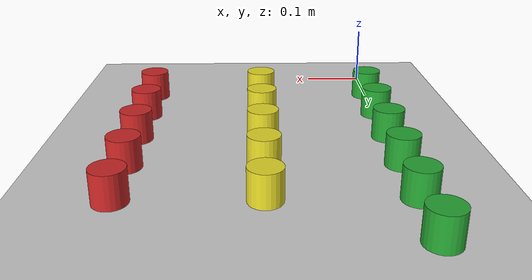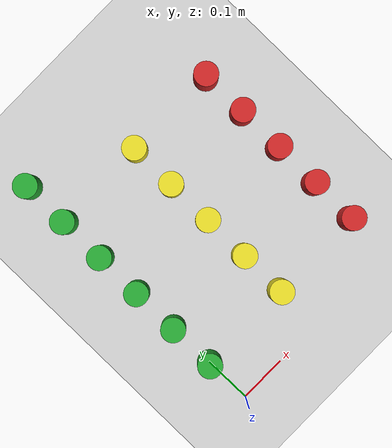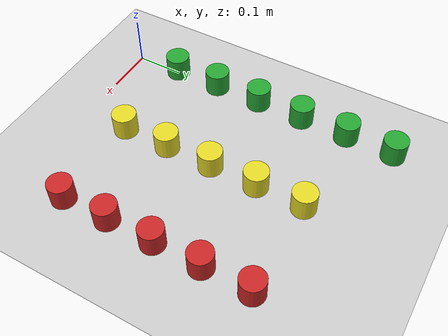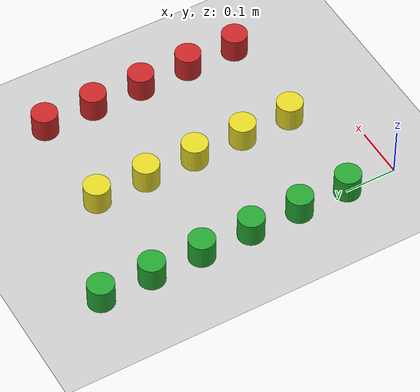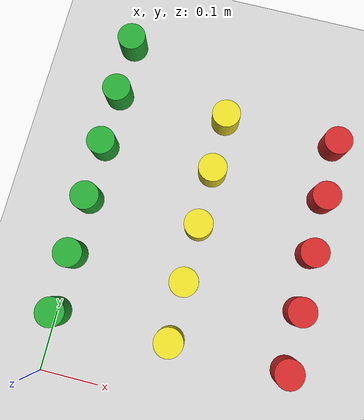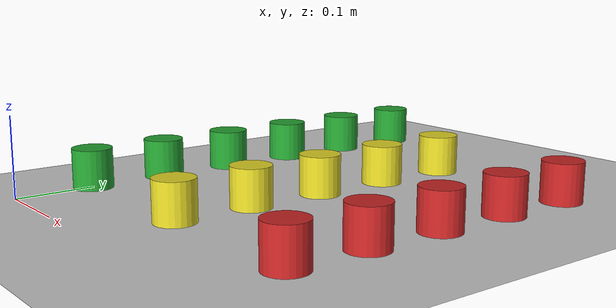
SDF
<sdf version="1.6">
 <world name="default">
  <model name="ground_plane">
   <static>1</static>
   <link name="link">
    <collision name="collision">
     <geometry><plane><normal>0 0 1</normal><size>100 100</size></plane></geometry>
     <surface>
      <contact><collide_bitmask>65535</collide_bitmask></contact>
      <friction><ode><mu>100</mu><mu2>50</mu2></ode></friction>
     </surface>
    </collision>
    <visual name="visual">
     <cast_shadows>0</cast_shadows>
     <geometry><plane><normal>0 0 1</normal><size>100 100</size></plane></geometry>
     <material>
      <script><uri>file://media/materials/scripts/gazebo.material</uri><name>Gazebo/Grey</name></script>
     </material>
    </visual>
   </link>
  </model>
  <model name="green_cylinder_short_clone_3">
   <link name="blue_cylinder_link">
    <inertial>
     <mass>1</mass>
     <inertia><ixx>0.145833</ixx><ixy>0</ixy><ixz>0</ixz><iyy>0.145833</iyy><iyz>0</iyz><izz>0.125</izz></inertia>
    </inertial>
    <pose>-0 -0 0.025 0 -0 0</pose>
    <visual name="visual">
     <geometry><cylinder><radius>0.025</radius><length>0.05</length></cylinder></geometry>
     <material>
      <script><name>Gazebo/Green</name><uri>file://media/materials/scripts/gazebo.material</uri></script>
      <shader type="pixel"><normal_map>__default__</normal_map></shader>
      <ambient>0 1 0 1</ambient>
      <diffuse>0 1 0 1</diffuse>
      <specular>0 1 0 1</specular>
      <emissive>0 1 0 1</emissive>
     </material>
    </visual>
    <collision name="collision">
     <geometry><cylinder><radius>0.025</radius><length>0.05</length></cylinder></geometry>
     <surface>
      <friction>
       <ode><mu>1</mu><mu2>1</mu2><fdir1>0 0 0</fdir1><slip1>0</slip1><slip2>0</slip2></ode>
       <torsional>
        <coefficient>1</coefficient>
        <patch_radius>0</patch_radius>
        <surface_radius>0</surface_radius>
        <use_patch_radius>1</use_patch_radius>
        <ode><slip>0</slip></ode>
       </torsional>
      </friction>
      <bounce><restitution_coefficient>0</restitution_coefficient><threshold>1e+06</threshold></bounce>
      <contact>
       <collide_without_contact>0</collide_without_contact>
       <collide_without_contact_bitmask>1</collide_without_contact_bitmask>
       <collide_bitmask>1</collide_bitmask>
       <ode>
        <soft_cfm>0</soft_cfm>
        <soft_erp>0.2</soft_erp>
        <kp>1e+13</kp>
        <kd>1</kd>
        <max_vel>0.01</max_vel>
        <min_depth>0</min_depth>
       </ode>
       <bullet>
        <split_impulse>1</split_impulse>
        <split_impulse_penetration_threshold>-0.01</split_impulse_penetration_threshold>
        <soft_cfm>0</soft_cfm>
        <soft_erp>0.2</soft_erp>
        <kp>1e+13</kp>
        <kd>1</kd>
       </bullet>
      </contact>
     </surface>
    </collision>
   </link>
   <static>0</static>
   <pose>0 0.1 0 -1e-06 1e-06 -1e-06</pose>
  </model>
  <model name="green_cylinder_short_clone_4">
   <link name="blue_cylinder_link">
    <inertial>
     <mass>1</mass>
     <inertia><ixx>0.145833</ixx><ixy>0</ixy><ixz>0</ixz><iyy>0.145833</iyy><iyz>0</iyz><izz>0.125</izz></inertia>
    </inertial>
    <pose>-0 -0 0.025 0 -0 0</pose>
    <visual name="visual">
     <geometry><cylinder><radius>0.025</radius><length>0.05</length></cylinder></geometry>
     <material>
      <script><name>Gazebo/Green</name><uri>file://media/materials/scripts/gazebo.material</uri></script>
      <shader type="pixel"><normal_map>__default__</normal_map></shader>
      <ambient>0 1 0 1</ambient>
      <diffuse>0 1 0 1</diffuse>
      <specular>0 1 0 1</specular>
      <emissive>0 1 0 1</emissive>
     </material>
    </visual>
    <collision name="collision">
     <geometry><cylinder><radius>0.025</radius><length>0.05</length></cylinder></geometry>
     <surface>
      <friction>
       <ode><mu>1</mu><mu2>1</mu2><fdir1>0 0 0</fdir1><slip1>0</slip1><slip2>0</slip2></ode>
       <torsional>
        <coefficient>1</coefficient>
        <patch_radius>0</patch_radius>
        <surface_radius>0</surface_radius>
        <use_patch_radius>1</use_patch_radius>
        <ode><slip>0</slip></ode>
       </torsional>
      </friction>
      <bounce><restitution_coefficient>0</restitution_coefficient><threshold>1e+06</threshold></bounce>
      <contact>
       <collide_without_contact>0</collide_without_contact>
       <collide_without_contact_bitmask>1</collide_without_contact_bitmask>
       <collide_bitmask>1</collide_bitmask>
       <ode>
        <soft_cfm>0</soft_cfm>
        <soft_erp>0.2</soft_erp>
        <kp>1e+13</kp>
        <kd>1</kd>
        <max_vel>0.01</max_vel>
        <min_depth>0</min_depth>
       </ode>
       <bullet>
        <split_impulse>1</split_impulse>
        <split_impulse_penetration_threshold>-0.01</split_impulse_penetration_threshold>
        <soft_cfm>0</soft_cfm>
        <soft_erp>0.2</soft_erp>
        <kp>1e+13</kp>
        <kd>1</kd>
       </bullet>
      </contact>
     </surface>
    </collision>
   </link>
   <static>0</static>
   <pose>0 0.2 0 -1e-06 1e-06 -1e-06</pose>
  </model>
  <model name="green_cylinder_short_clone_5">
   <link name="blue_cylinder_link">
    <inertial>
     <mass>1</mass>
     <inertia><ixx>0.145833</ixx><ixy>0</ixy><ixz>0</ixz><iyy>0.145833</iyy><iyz>0</iyz><izz>0.125</izz></inertia>
    </inertial>
    <pose>-0 -0 0.025 0 -0 0</pose>
    <visual name="visual">
     <geometry><cylinder><radius>0.025</radius><length>0.05</length></cylinder></geometry>
     <material>
      <script><name>Gazebo/Green</name><uri>file://media/materials/scripts/gazebo.material</uri></script>
      <shader type="pixel"><normal_map>__default__</normal_map></shader>
      <ambient>0 1 0 1</ambient>
      <diffuse>0 1 0 1</diffuse>
      <specular>0 1 0 1</specular>
      <emissive>0 1 0 1</emissive>
     </material>
    </visual>
    <collision name="collision">
     <geometry><cylinder><radius>0.025</radius><length>0.05</length></cylinder></geometry>
     <surface>
      <friction>
       <ode><mu>1</mu><mu2>1</mu2><fdir1>0 0 0</fdir1><slip1>0</slip1><slip2>0</slip2></ode>
       <torsional>
        <coefficient>1</coefficient>
        <patch_radius>0</patch_radius>
        <surface_radius>0</surface_radius>
        <use_patch_radius>1</use_patch_radius>
        <ode><slip>0</slip></ode>
       </torsional>
      </friction>
      <bounce><restitution_coefficient>0</restitution_coefficient><threshold>1e+06</threshold></bounce>
      <contact>
       <collide_without_contact>0</collide_without_contact>
       <collide_without_contact_bitmask>1</collide_without_contact_bitmask>
       <collide_bitmask>1</collide_bitmask>
       <ode>
        <soft_cfm>0</soft_cfm>
        <soft_erp>0.2</soft_erp>
        <kp>1e+13</kp>
        <kd>1</kd>
        <max_vel>0.01</max_vel>
        <min_depth>0</min_depth>
       </ode>
       <bullet>
        <split_impulse>1</split_impulse>
        <split_impulse_penetration_threshold>-0.01</split_impulse_penetration_threshold>
        <soft_cfm>0</soft_cfm>
        <soft_erp>0.2</soft_erp>
        <kp>1e+13</kp>
        <kd>1</kd>
       </bullet>
      </contact>
     </surface>
    </collision>
   </link>
   <static>0</static>
   <pose>0 0.3 0 -1e-06 1e-06 -1e-06</pose>
  </model>
  <model name="green_cylinder_short_clone_6">
   <link name="blue_cylinder_link">
    <inertial>
     <mass>1</mass>
     <inertia><ixx>0.145833</ixx><ixy>0</ixy><ixz>0</ixz><iyy>0.145833</iyy><iyz>0</iyz><izz>0.125</izz></inertia>
    </inertial>
    <pose>-0 -0 0.025 0 -0 0</pose>
    <visual name="visual">
     <geometry><cylinder><radius>0.025</radius><length>0.05</length></cylinder></geometry>
     <material>
      <script><name>Gazebo/Green</name><uri>file://media/materials/scripts/gazebo.material</uri></script>
      <shader type="pixel"><normal_map>__default__</normal_map></shader>
      <ambient>0 1 0 1</ambient>
      <diffuse>0 1 0 1</diffuse>
      <specular>0 1 0 1</specular>
      <emissive>0 1 0 1</emissive>
     </material>
    </visual>
    <collision name="collision">
     <geometry><cylinder><radius>0.025</radius><length>0.05</length></cylinder></geometry>
     <surface>
      <friction>
       <ode><mu>1</mu><mu2>1</mu2><fdir1>0 0 0</fdir1><slip1>0</slip1><slip2>0</slip2></ode>
       <torsional>
        <coefficient>1</coefficient>
        <patch_radius>0</patch_radius>
        <surface_radius>0</surface_radius>
        <use_patch_radius>1</use_patch_radius>
        <ode><slip>0</slip></ode>
       </torsional>
      </friction>
      <bounce><restitution_coefficient>0</restitution_coefficient><threshold>1e+06</threshold></bounce>
      <contact>
       <collide_without_contact>0</collide_without_contact>
       <collide_without_contact_bitmask>1</collide_without_contact_bitmask>
       <collide_bitmask>1</collide_bitmask>
       <ode>
        <soft_cfm>0</soft_cfm>
        <soft_erp>0.2</soft_erp>
        <kp>1e+13</kp>
        <kd>1</kd>
        <max_vel>0.01</max_vel>
        <min_depth>0</min_depth>
       </ode>
       <bullet>
        <split_impulse>1</split_impulse>
        <split_impulse_penetration_threshold>-0.01</split_impulse_penetration_threshold>
        <soft_cfm>0</soft_cfm>
        <soft_erp>0.2</soft_erp>
        <kp>1e+13</kp>
        <kd>1</kd>
       </bullet>
      </contact>
     </surface>
    </collision>
   </link>
   <static>0</static>
   <pose>0 0.4 0 -1e-06 1e-06 -1e-06</pose>
  </model>
  <model name="green_cylinder_short_clone_7">
   <link name="blue_cylinder_link">
    <inertial>
     <mass>1</mass>
     <inertia><ixx>0.145833</ixx><ixy>0</ixy><ixz>0</ixz><iyy>0.145833</iyy><iyz>0</iyz><izz>0.125</izz></inertia>
    </inertial>
    <pose>-0 -0 0.025 0 -0 0</pose>
    <visual name="visual">
     <geometry><cylinder><radius>0.025</radius><length>0.05</length></cylinder></geometry>
     <material>
      <script><name>Gazebo/Green</name><uri>file://media/materials/scripts/gazebo.material</uri></script>
      <shader type="pixel"><normal_map>__default__</normal_map></shader>
      <ambient>0 1 0 1</ambient>
      <diffuse>0 1 0 1</diffuse>
      <specular>0 1 0 1</specular>
      <emissive>0 1 0 1</emissive>
     </material>
    </visual>
    <collision name="collision">
     <geometry><cylinder><radius>0.025</radius><length>0.05</length></cylinder></geometry>
     <surface>
      <friction>
       <ode><mu>1</mu><mu2>1</mu2><fdir1>0 0 0</fdir1><slip1>0</slip1><slip2>0</slip2></ode>
       <torsional>
        <coefficient>1</coefficient>
        <patch_radius>0</patch_radius>
        <surface_radius>0</surface_radius>
        <use_patch_radius>1</use_patch_radius>
        <ode><slip>0</slip></ode>
       </torsional>
      </friction>
      <bounce><restitution_coefficient>0</restitution_coefficient><threshold>1e+06</threshold></bounce>
      <contact>
       <collide_without_contact>0</collide_without_contact>
       <collide_without_contact_bitmask>1</collide_without_contact_bitmask>
       <collide_bitmask>1</collide_bitmask>
       <ode>
        <soft_cfm>0</soft_cfm>
        <soft_erp>0.2</soft_erp>
        <kp>1e+13</kp>
        <kd>1</kd>
        <max_vel>0.01</max_vel>
        <min_depth>0</min_depth>
       </ode>
       <bullet>
        <split_impulse>1</split_impulse>
        <split_impulse_penetration_threshold>-0.01</split_impulse_penetration_threshold>
        <soft_cfm>0</soft_cfm>
        <soft_erp>0.2</soft_erp>
        <kp>1e+13</kp>
        <kd>1</kd>
       </bullet>
      </contact>
     </surface>
    </collision>
   </link>
   <static>0</static>
   <pose>0 0.5 0 -1e-06 1e-06 -1e-06</pose>
  </model>
  <model name="green_cylinder_short_clone_8">
   <link name="blue_cylinder_link">
    <inertial>
     <mass>1</mass>
     <inertia><ixx>0.145833</ixx><ixy>0</ixy><ixz>0</ixz><iyy>0.145833</iyy><iyz>0</iyz><izz>0.125</izz></inertia>
    </inertial>
    <pose>-0 -0 0.025 0 -0 0</pose>
    <visual name="visual">
     <geometry><cylinder><radius>0.025</radius><length>0.05</length></cylinder></geometry>
     <material>
      <script><name>Gazebo/Green</name><uri>file://media/materials/scripts/gazebo.material</uri></script>
      <shader type="pixel"><normal_map>__default__</normal_map></shader>
      <ambient>0 1 0 1</ambient>
      <diffuse>0 1 0 1</diffuse>
      <specular>0 1 0 1</specular>
      <emissive>0 1 0 1</emissive>
     </material>
    </visual>
    <collision name="collision">
     <geometry><cylinder><radius>0.025</radius><length>0.05</length></cylinder></geometry>
     <surface>
      <friction>
       <ode><mu>1</mu><mu2>1</mu2><fdir1>0 0 0</fdir1><slip1>0</slip1><slip2>0</slip2></ode>
       <torsional>
        <coefficient>1</coefficient>
        <patch_radius>0</patch_radius>
        <surface_radius>0</surface_radius>
        <use_patch_radius>1</use_patch_radius>
        <ode><slip>0</slip></ode>
       </torsional>
      </friction>
      <bounce><restitution_coefficient>0</restitution_coefficient><threshold>1e+06</threshold></bounce>
      <contact>
       <collide_without_contact>0</collide_without_contact>
       <collide_without_contact_bitmask>1</collide_without_contact_bitmask>
       <collide_bitmask>1</collide_bitmask>
       <ode>
        <soft_cfm>0</soft_cfm>
        <soft_erp>0.2</soft_erp>
        <kp>1e+13</kp>
        <kd>1</kd>
        <max_vel>0.01</max_vel>
        <min_depth>0</min_depth>
       </ode>
       <bullet>
        <split_impulse>1</split_impulse>
        <split_impulse_penetration_threshold>-0.01</split_impulse_penetration_threshold>
        <soft_cfm>0</soft_cfm>
        <soft_erp>0.2</soft_erp>
        <kp>1e+13</kp>
        <kd>1</kd>
       </bullet>
      </contact>
     </surface>
    </collision>
   </link>
   <static>0</static>
   <pose>0 0.6 0 -1e-06 1e-06 -1e-06</pose>
  </model>
  <model name="yellow_cylinder_short_clone_3">
   <link name="blue_cylinder_link">
    <inertial>
     <mass>1</mass>
     <inertia><ixx>0.145833</ixx><ixy>0</ixy><ixz>0</ixz><iyy>0.145833</iyy><iyz>0</iyz><izz>0.125</izz></inertia>
    </inertial>
    <pose>-0 -0 0.025 0 -0 0</pose>
    <visual name="visual">
     <geometry><cylinder><radius>0.025</radius><length>0.05</length></cylinder></geometry>
     <material>
      <script><name>Gazebo/Yellow</name><uri>file://media/materials/scripts/gazebo.material</uri></script>
      <shader type="pixel"><normal_map>__default__</normal_map></shader>
      <ambient>1 0.8 0 1</ambient>
      <diffuse>1 0.8 0 1</diffuse>
      <specular>1 0.8 0 1</specular>
      <emissive>1 0.8 0 1</emissive>
     </material>
    </visual>
    <collision name="collision">
     <geometry><cylinder><radius>0.025</radius><length>0.05</length></cylinder></geometry>
     <surface>
      <friction>
       <ode><mu>1</mu><mu2>1</mu2><fdir1>0 0 0</fdir1><slip1>0</slip1><slip2>0</slip2></ode>
       <torsional>
        <coefficient>1</coefficient>
        <patch_radius>0</patch_radius>
        <surface_radius>0</surface_radius>
        <use_patch_radius>1</use_patch_radius>
        <ode><slip>0</slip></ode>
       </torsional>
      </friction>
      <bounce><restitution_coefficient>0</restitution_coefficient><threshold>1e+06</threshold></bounce>
      <contact>
       <collide_without_contact>0</collide_without_contact>
       <collide_without_contact_bitmask>1</collide_without_contact_bitmask>
       <collide_bitmask>1</collide_bitmask>
       <ode>
        <soft_cfm>0</soft_cfm>
        <soft_erp>0.2</soft_erp>
        <kp>1e+13</kp>
        <kd>1</kd>
        <max_vel>0.01</max_vel>
        <min_depth>0</min_depth>
       </ode>
       <bullet>
        <split_impulse>1</split_impulse>
        <split_impulse_penetration_threshold>-0.01</split_impulse_penetration_threshold>
        <soft_cfm>0</soft_cfm>
        <soft_erp>0.2</soft_erp>
        <kp>1e+13</kp>
        <kd>1</kd>
       </bullet>
      </contact>
     </surface>
    </collision>
   </link>
   <static>0</static>
   <pose>0.2 0.1 0 -1e-06 1e-06 -1e-06</pose>
  </model>
  <model name="yellow_cylinder_short_clone_4">
   <link name="blue_cylinder_link">
    <inertial>
     <mass>1</mass>
     <inertia><ixx>0.145833</ixx><ixy>0</ixy><ixz>0</ixz><iyy>0.145833</iyy><iyz>0</iyz><izz>0.125</izz></inertia>
    </inertial>
    <pose>-0 -0 0.025 0 -0 0</pose>
    <visual name="visual">
     <geometry><cylinder><radius>0.025</radius><length>0.05</length></cylinder></geometry>
     <material>
      <script><name>Gazebo/Yellow</name><uri>file://media/materials/scripts/gazebo.material</uri></script>
      <shader type="pixel"><normal_map>__default__</normal_map></shader>
      <ambient>1 0.8 0 1</ambient>
      <diffuse>1 0.8 0 1</diffuse>
      <specular>1 0.8 0 1</specular>
      <emissive>1 0.8 0 1</emissive>
     </material>
    </visual>
    <collision name="collision">
     <geometry><cylinder><radius>0.025</radius><length>0.05</length></cylinder></geometry>
     <surface>
      <friction>
       <ode><mu>1</mu><mu2>1</mu2><fdir1>0 0 0</fdir1><slip1>0</slip1><slip2>0</slip2></ode>
       <torsional>
        <coefficient>1</coefficient>
        <patch_radius>0</patch_radius>
        <surface_radius>0</surface_radius>
        <use_patch_radius>1</use_patch_radius>
        <ode><slip>0</slip></ode>
       </torsional>
      </friction>
      <bounce><restitution_coefficient>0</restitution_coefficient><threshold>1e+06</threshold></bounce>
      <contact>
       <collide_without_contact>0</collide_without_contact>
       <collide_without_contact_bitmask>1</collide_without_contact_bitmask>
       <collide_bitmask>1</collide_bitmask>
       <ode>
        <soft_cfm>0</soft_cfm>
        <soft_erp>0.2</soft_erp>
        <kp>1e+13</kp>
        <kd>1</kd>
        <max_vel>0.01</max_vel>
        <min_depth>0</min_depth>
       </ode>
       <bullet>
        <split_impulse>1</split_impulse>
        <split_impulse_penetration_threshold>-0.01</split_impulse_penetration_threshold>
        <soft_cfm>0</soft_cfm>
        <soft_erp>0.2</soft_erp>
        <kp>1e+13</kp>
        <kd>1</kd>
       </bullet>
      </contact>
     </surface>
    </collision>
   </link>
   <static>0</static>
   <pose>0.2 0.2 0 -1e-06 1e-06 -1e-06</pose>
  </model>
  <model name="yellow_cylinder_short_clone_5">
   <link name="blue_cylinder_link">
    <inertial>
     <mass>1</mass>
     <inertia><ixx>0.145833</ixx><ixy>0</ixy><ixz>0</ixz><iyy>0.145833</iyy><iyz>0</iyz><izz>0.125</izz></inertia>
    </inertial>
    <pose>-0 -0 0.025 0 -0 0</pose>
    <visual name="visual">
     <geometry><cylinder><radius>0.025</radius><length>0.05</length></cylinder></geometry>
     <material>
      <script><name>Gazebo/Yellow</name><uri>file://media/materials/scripts/gazebo.material</uri></script>
      <shader type="pixel"><normal_map>__default__</normal_map></shader>
      <ambient>1 0.8 0 1</ambient>
      <diffuse>1 0.8 0 1</diffuse>
      <specular>1 0.8 0 1</specular>
      <emissive>1 0.8 0 1</emissive>
     </material>
    </visual>
    <collision name="collision">
     <geometry><cylinder><radius>0.025</radius><length>0.05</length></cylinder></geometry>
     <surface>
      <friction>
       <ode><mu>1</mu><mu2>1</mu2><fdir1>0 0 0</fdir1><slip1>0</slip1><slip2>0</slip2></ode>
       <torsional>
        <coefficient>1</coefficient>
        <patch_radius>0</patch_radius>
        <surface_radius>0</surface_radius>
        <use_patch_radius>1</use_patch_radius>
        <ode><slip>0</slip></ode>
       </torsional>
      </friction>
      <bounce><restitution_coefficient>0</restitution_coefficient><threshold>1e+06</threshold></bounce>
      <contact>
       <collide_without_contact>0</collide_without_contact>
       <collide_without_contact_bitmask>1</collide_without_contact_bitmask>
       <collide_bitmask>1</collide_bitmask>
       <ode>
        <soft_cfm>0</soft_cfm>
        <soft_erp>0.2</soft_erp>
        <kp>1e+13</kp>
        <kd>1</kd>
        <max_vel>0.01</max_vel>
        <min_depth>0</min_depth>
       </ode>
       <bullet>
        <split_impulse>1</split_impulse>
        <split_impulse_penetration_threshold>-0.01</split_impulse_penetration_threshold>
        <soft_cfm>0</soft_cfm>
        <soft_erp>0.2</soft_erp>
        <kp>1e+13</kp>
        <kd>1</kd>
       </bullet>
      </contact>
     </surface>
    </collision>
   </link>
   <static>0</static>
   <pose>0.2 0.3 0 -1e-06 1e-06 -1e-06</pose>
  </model>
  <model name="yellow_cylinder_short_clone_6">
   <link name="blue_cylinder_link">
    <inertial>
     <mass>1</mass>
     <inertia><ixx>0.145833</ixx><ixy>0</ixy><ixz>0</ixz><iyy>0.145833</iyy><iyz>0</iyz><izz>0.125</izz></inertia>
    </inertial>
    <pose>-0 -0 0.025 0 -0 0</pose>
    <visual name="visual">
     <geometry><cylinder><radius>0.025</radius><length>0.05</length></cylinder></geometry>
     <material>
      <script><name>Gazebo/Yellow</name><uri>file://media/materials/scripts/gazebo.material</uri></script>
      <shader type="pixel"><normal_map>__default__</normal_map></shader>
      <ambient>1 0.8 0 1</ambient>
      <diffuse>1 0.8 0 1</diffuse>
      <specular>1 0.8 0 1</specular>
      <emissive>1 0.8 0 1</emissive>
     </material>
    </visual>
    <collision name="collision">
     <geometry><cylinder><radius>0.025</radius><length>0.05</length></cylinder></geometry>
     <surface>
      <friction>
       <ode><mu>1</mu><mu2>1</mu2><fdir1>0 0 0</fdir1><slip1>0</slip1><slip2>0</slip2></ode>
       <torsional>
        <coefficient>1</coefficient>
        <patch_radius>0</patch_radius>
        <surface_radius>0</surface_radius>
        <use_patch_radius>1</use_patch_radius>
        <ode><slip>0</slip></ode>
       </torsional>
      </friction>
      <bounce><restitution_coefficient>0</restitution_coefficient><threshold>1e+06</threshold></bounce>
      <contact>
       <collide_without_contact>0</collide_without_contact>
       <collide_without_contact_bitmask>1</collide_without_contact_bitmask>
       <collide_bitmask>1</collide_bitmask>
       <ode>
        <soft_cfm>0</soft_cfm>
        <soft_erp>0.2</soft_erp>
        <kp>1e+13</kp>
        <kd>1</kd>
        <max_vel>0.01</max_vel>
        <min_depth>0</min_depth>
       </ode>
       <bullet>
        <split_impulse>1</split_impulse>
        <split_impulse_penetration_threshold>-0.01</split_impulse_penetration_threshold>
        <soft_cfm>0</soft_cfm>
        <soft_erp>0.2</soft_erp>
        <kp>1e+13</kp>
        <kd>1</kd>
       </bullet>
      </contact>
     </surface>
    </collision>
   </link>
   <static>0</static>
   <pose>0.2 0.4 0 -1e-06 1e-06 -1e-06</pose>
  </model>
  <model name="yellow_cylinder_short_clone_7">
   <link name="blue_cylinder_link">
    <inertial>
     <mass>1</mass>
     <inertia><ixx>0.145833</ixx><ixy>0</ixy><ixz>0</ixz><iyy>0.145833</iyy><iyz>0</iyz><izz>0.125</izz></inertia>
    </inertial>
    <pose>-0 -0 0.025 0 -0 0</pose>
    <visual name="visual">
     <geometry><cylinder><radius>0.025</radius><length>0.05</length></cylinder></geometry>
     <material>
      <script><name>Gazebo/Yellow</name><uri>file://media/materials/scripts/gazebo.material</uri></script>
      <shader type="pixel"><normal_map>__default__</normal_map></shader>
      <ambient>1 0.8 0 1</ambient>
      <diffuse>1 0.8 0 1</diffuse>
      <specular>1 0.8 0 1</specular>
      <emissive>1 0.8 0 1</emissive>
     </material>
    </visual>
    <collision name="collision">
     <geometry><cylinder><radius>0.025</radius><length>0.05</length></cylinder></geometry>
     <surface>
      <friction>
       <ode><mu>1</mu><mu2>1</mu2><fdir1>0 0 0</fdir1><slip1>0</slip1><slip2>0</slip2></ode>
       <torsional>
        <coefficient>1</coefficient>
        <patch_radius>0</patch_radius>
        <surface_radius>0</surface_radius>
        <use_patch_radius>1</use_patch_radius>
        <ode><slip>0</slip></ode>
       </torsional>
      </friction>
      <bounce><restitution_coefficient>0</restitution_coefficient><threshold>1e+06</threshold></bounce>
      <contact>
       <collide_without_contact>0</collide_without_contact>
       <collide_without_contact_bitmask>1</collide_without_contact_bitmask>
       <collide_bitmask>1</collide_bitmask>
       <ode>
        <soft_cfm>0</soft_cfm>
        <soft_erp>0.2</soft_erp>
        <kp>1e+13</kp>
        <kd>1</kd>
        <max_vel>0.01</max_vel>
        <min_depth>0</min_depth>
       </ode>
       <bullet>
        <split_impulse>1</split_impulse>
        <split_impulse_penetration_threshold>-0.01</split_impulse_penetration_threshold>
        <soft_cfm>0</soft_cfm>
        <soft_erp>0.2</soft_erp>
        <kp>1e+13</kp>
        <kd>1</kd>
       </bullet>
      </contact>
     </surface>
    </collision>
   </link>
   <static>0</static>
   <pose>0.2 0.5 0 -1e-06 1e-06 -1e-06</pose>
  </model>
  <model name="red_cylinder_short_clone_3">
   <link name="blue_cylinder_link">
    <inertial>
     <mass>1</mass>
     <inertia><ixx>0.145833</ixx><ixy>0</ixy><ixz>0</ixz><iyy>0.145833</iyy><iyz>0</iyz><izz>0.125</izz></inertia>
    </inertial>
    <pose>-0 -0 0.025 0 -0 0</pose>
    <visual name="visual">
     <geometry><cylinder><radius>0.025</radius><length>0.05</length></cylinder></geometry>
     <material>
      <script><name>Gazebo/Red</name><uri>file://media/materials/scripts/gazebo.material</uri></script>
      <shader type="pixel"><normal_map>__default__</normal_map></shader>
      <ambient>0.8 0 0 1</ambient>
      <diffuse>0.8 0 0 1</diffuse>
      <specular>0.8 0 0 1</specular>
      <emissive>0.8 0 0 1</emissive>
     </material>
    </visual>
    <collision name="collision">
     <geometry><cylinder><radius>0.025</radius><length>0.05</length></cylinder></geometry>
     <surface>
      <friction>
       <ode><mu>1</mu><mu2>1</mu2><fdir1>0 0 0</fdir1><slip1>0</slip1><slip2>0</slip2></ode>
       <torsional>
        <coefficient>1</coefficient>
        <patch_radius>0</patch_radius>
        <surface_radius>0</surface_radius>
        <use_patch_radius>1</use_patch_radius>
        <ode><slip>0</slip></ode>
       </torsional>
      </friction>
      <bounce><restitution_coefficient>0</restitution_coefficient><threshold>1e+06</threshold></bounce>
      <contact>
       <collide_without_contact>0</collide_without_contact>
       <collide_without_contact_bitmask>1</collide_without_contact_bitmask>
       <collide_bitmask>1</collide_bitmask>
       <ode>
        <soft_cfm>0</soft_cfm>
        <soft_erp>0.2</soft_erp>
        <kp>1e+13</kp>
        <kd>1</kd>
        <max_vel>0.01</max_vel>
        <min_depth>0</min_depth>
       </ode>
       <bullet>
        <split_impulse>1</split_impulse>
        <split_impulse_penetration_threshold>-0.01</split_impulse_penetration_threshold>
        <soft_cfm>0</soft_cfm>
        <soft_erp>0.2</soft_erp>
        <kp>1e+13</kp>
        <kd>1</kd>
       </bullet>
      </contact>
     </surface>
    </collision>
   </link>
   <static>0</static>
   <pose>0.4 0.1 0 -1e-06 1e-06 -1e-06</pose>
  </model>
  <model name="red_cylinder_short_clone_4">
   <link name="blue_cylinder_link">
    <inertial>
     <mass>1</mass>
     <inertia><ixx>0.145833</ixx><ixy>0</ixy><ixz>0</ixz><iyy>0.145833</iyy><iyz>0</iyz><izz>0.125</izz></inertia>
    </inertial>
    <pose>-0 -0 0.025 0 -0 0</pose>
    <visual name="visual">
     <geometry><cylinder><radius>0.025</radius><length>0.05</length></cylinder></geometry>
     <material>
      <script><name>Gazebo/Red</name><uri>file://media/materials/scripts/gazebo.material</uri></script>
      <shader type="pixel"><normal_map>__default__</normal_map></shader>
      <ambient>0.8 0 0 1</ambient>
      <diffuse>0.8 0 0 1</diffuse>
      <specular>0.8 0 0 1</specular>
      <emissive>0.8 0 0 1</emissive>
     </material>
    </visual>
    <collision name="collision">
     <geometry><cylinder><radius>0.025</radius><length>0.05</length></cylinder></geometry>
     <surface>
      <friction>
       <ode><mu>1</mu><mu2>1</mu2><fdir1>0 0 0</fdir1><slip1>0</slip1><slip2>0</slip2></ode>
       <torsional>
        <coefficient>1</coefficient>
        <patch_radius>0</patch_radius>
        <surface_radius>0</surface_radius>
        <use_patch_radius>1</use_patch_radius>
        <ode><slip>0</slip></ode>
       </torsional>
      </friction>
      <bounce><restitution_coefficient>0</restitution_coefficient><threshold>1e+06</threshold></bounce>
      <contact>
       <collide_without_contact>0</collide_without_contact>
       <collide_without_contact_bitmask>1</collide_without_contact_bitmask>
       <collide_bitmask>1</collide_bitmask>
       <ode>
        <soft_cfm>0</soft_cfm>
        <soft_erp>0.2</soft_erp>
        <kp>1e+13</kp>
        <kd>1</kd>
        <max_vel>0.01</max_vel>
        <min_depth>0</min_depth>
       </ode>
       <bullet>
        <split_impulse>1</split_impulse>
        <split_impulse_penetration_threshold>-0.01</split_impulse_penetration_threshold>
        <soft_cfm>0</soft_cfm>
        <soft_erp>0.2</soft_erp>
        <kp>1e+13</kp>
        <kd>1</kd>
       </bullet>
      </contact>
     </surface>
    </collision>
   </link>
   <static>0</static>
   <pose>0.4 0.2 0 -1e-06 1e-06 -1e-06</pose>
  </model>
  <model name="red_cylinder_short_clone_5">
   <link name="blue_cylinder_link">
    <inertial>
     <mass>1</mass>
     <inertia><ixx>0.145833</ixx><ixy>0</ixy><ixz>0</ixz><iyy>0.145833</iyy><iyz>0</iyz><izz>0.125</izz></inertia>
    </inertial>
    <pose>-0 -0 0.025 0 -0 0</pose>
    <visual name="visual">
     <geometry><cylinder><radius>0.025</radius><length>0.05</length></cylinder></geometry>
     <material>
      <script><name>Gazebo/Red</name><uri>file://media/materials/scripts/gazebo.material</uri></script>
      <shader type="pixel"><normal_map>__default__</normal_map></shader>
      <ambient>0.8 0 0 1</ambient>
      <diffuse>0.8 0 0 1</diffuse>
      <specular>0.8 0 0 1</specular>
      <emissive>0.8 0 0 1</emissive>
     </material>
    </visual>
    <collision name="collision">
     <geometry><cylinder><radius>0.025</radius><length>0.05</length></cylinder></geometry>
     <surface>
      <friction>
       <ode><mu>1</mu><mu2>1</mu2><fdir1>0 0 0</fdir1><slip1>0</slip1><slip2>0</slip2></ode>
       <torsional>
        <coefficient>1</coefficient>
        <patch_radius>0</patch_radius>
        <surface_radius>0</surface_radius>
        <use_patch_radius>1</use_patch_radius>
        <ode><slip>0</slip></ode>
       </torsional>
      </friction>
      <bounce><restitution_coefficient>0</restitution_coefficient><threshold>1e+06</threshold></bounce>
      <contact>
       <collide_without_contact>0</collide_without_contact>
       <collide_without_contact_bitmask>1</collide_without_contact_bitmask>
       <collide_bitmask>1</collide_bitmask>
       <ode>
        <soft_cfm>0</soft_cfm>
        <soft_erp>0.2</soft_erp>
        <kp>1e+13</kp>
        <kd>1</kd>
        <max_vel>0.01</max_vel>
        <min_depth>0</min_depth>
       </ode>
       <bullet>
        <split_impulse>1</split_impulse>
        <split_impulse_penetration_threshold>-0.01</split_impulse_penetration_threshold>
        <soft_cfm>0</soft_cfm>
        <soft_erp>0.2</soft_erp>
        <kp>1e+13</kp>
        <kd>1</kd>
       </bullet>
      </contact>
     </surface>
    </collision>
   </link>
   <static>0</static>
   <pose>0.4 0.3 0 -1e-06 1e-06 -1e-06</pose>
  </model>
  <model name="red_cylinder_short_clone_6">
   <link name="blue_cylinder_link">
    <inertial>
     <mass>1</mass>
     <inertia><ixx>0.145833</ixx><ixy>0</ixy><ixz>0</ixz><iyy>0.145833</iyy><iyz>0</iyz><izz>0.125</izz></inertia>
    </inertial>
    <pose>-0 -0 0.025 0 -0 0</pose>
    <visual name="visual">
     <geometry><cylinder><radius>0.025</radius><length>0.05</length></cylinder></geometry>
     <material>
      <script><name>Gazebo/Red</name><uri>file://media/materials/scripts/gazebo.material</uri></script>
      <shader type="pixel"><normal_map>__default__</normal_map></shader>
      <ambient>0.8 0 0 1</ambient>
      <diffuse>0.8 0 0 1</diffuse>
      <specular>0.8 0 0 1</specular>
      <emissive>0.8 0 0 1</emissive>
     </material>
    </visual>
    <collision name="collision">
     <geometry><cylinder><radius>0.025</radius><length>0.05</length></cylinder></geometry>
     <surface>
      <friction>
       <ode><mu>1</mu><mu2>1</mu2><fdir1>0 0 0</fdir1><slip1>0</slip1><slip2>0</slip2></ode>
       <torsional>
        <coefficient>1</coefficient>
        <patch_radius>0</patch_radius>
        <surface_radius>0</surface_radius>
        <use_patch_radius>1</use_patch_radius>
        <ode><slip>0</slip></ode>
       </torsional>
      </friction>
      <bounce><restitution_coefficient>0</restitution_coefficient><threshold>1e+06</threshold></bounce>
      <contact>
       <collide_without_contact>0</collide_without_contact>
       <collide_without_contact_bitmask>1</collide_without_contact_bitmask>
       <collide_bitmask>1</collide_bitmask>
       <ode>
        <soft_cfm>0</soft_cfm>
        <soft_erp>0.2</soft_erp>
        <kp>1e+13</kp>
        <kd>1</kd>
        <max_vel>0.01</max_vel>
        <min_depth>0</min_depth>
       </ode>
       <bullet>
        <split_impulse>1</split_impulse>
        <split_impulse_penetration_threshold>-0.01</split_impulse_penetration_threshold>
        <soft_cfm>0</soft_cfm>
        <soft_erp>0.2</soft_erp>
        <kp>1e+13</kp>
        <kd>1</kd>
       </bullet>
      </contact>
     </surface>
    </collision>
   </link>
   <static>0</static>
   <pose>0.4 0.4 0 -1e-06 1e-06 -1e-06</pose>
  </model>
  <model name="red_cylinder_short_clone_7">
   <link name="blue_cylinder_link">
    <inertial>
     <mass>1</mass>
     <inertia><ixx>0.145833</ixx><ixy>0</ixy><ixz>0</ixz><iyy>0.145833</iyy><iyz>0</iyz><izz>0.125</izz></inertia>
    </inertial>
    <pose>-0 -0 0.025 0 -0 0</pose>
    <visual name="visual">
     <geometry><cylinder><radius>0.025</radius><length>0.05</length></cylinder></geometry>
     <material>
      <script><name>Gazebo/Red</name><uri>file://media/materials/scripts/gazebo.material</uri></script>
      <shader type="pixel"><normal_map>__default__</normal_map></shader>
      <ambient>0.8 0 0 1</ambient>
      <diffuse>0.8 0 0 1</diffuse>
      <specular>0.8 0 0 1</specular>
      <emissive>0.8 0 0 1</emissive>
     </material>
    </visual>
    <collision name="collision">
     <geometry><cylinder><radius>0.025</radius><length>0.05</length></cylinder></geometry>
     <surface>
      <friction>
       <ode><mu>1</mu><mu2>1</mu2><fdir1>0 0 0</fdir1><slip1>0</slip1><slip2>0</slip2></ode>
       <torsional>
        <coefficient>1</coefficient>
        <patch_radius>0</patch_radius>
        <surface_radius>0</surface_radius>
        <use_patch_radius>1</use_patch_radius>
        <ode><slip>0</slip></ode>
       </torsional>
      </friction>
      <bounce><restitution_coefficient>0</restitution_coefficient><threshold>1e+06</threshold></bounce>
      <contact>
       <collide_without_contact>0</collide_without_contact>
       <collide_without_contact_bitmask>1</collide_without_contact_bitmask>
       <collide_bitmask>1</collide_bitmask>
       <ode>
        <soft_cfm>0</soft_cfm>
        <soft_erp>0.2</soft_erp>
        <kp>1e+13</kp>
        <kd>1</kd>
        <max_vel>0.01</max_vel>
        <min_depth>0</min_depth>
       </ode>
       <bullet>
        <split_impulse>1</split_impulse>
        <split_impulse_penetration_threshold>-0.01</split_impulse_penetration_threshold>
        <soft_cfm>0</soft_cfm>
        <soft_erp>0.2</soft_erp>
        <kp>1e+13</kp>
        <kd>1</kd>
       </bullet>
      </contact>
     </surface>
    </collision>
   </link>
   <static>0</static>
   <pose>0.4 0.5 0 -1e-06 1e-06 -1e-06</pose>
  </model>
 </world>
</sdf>
